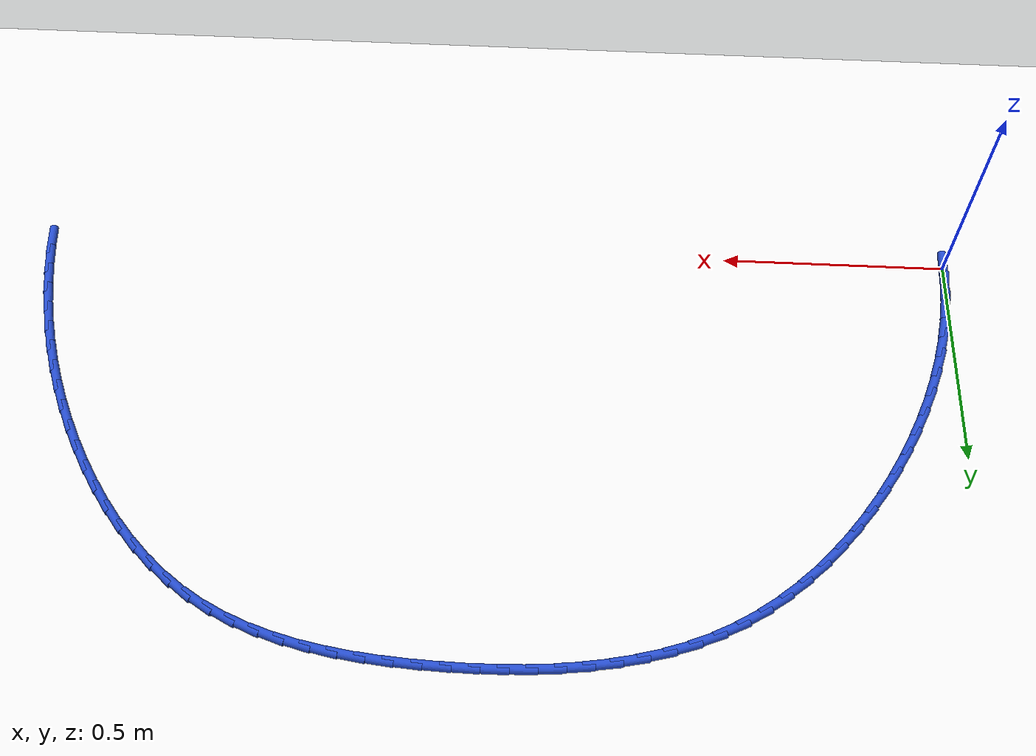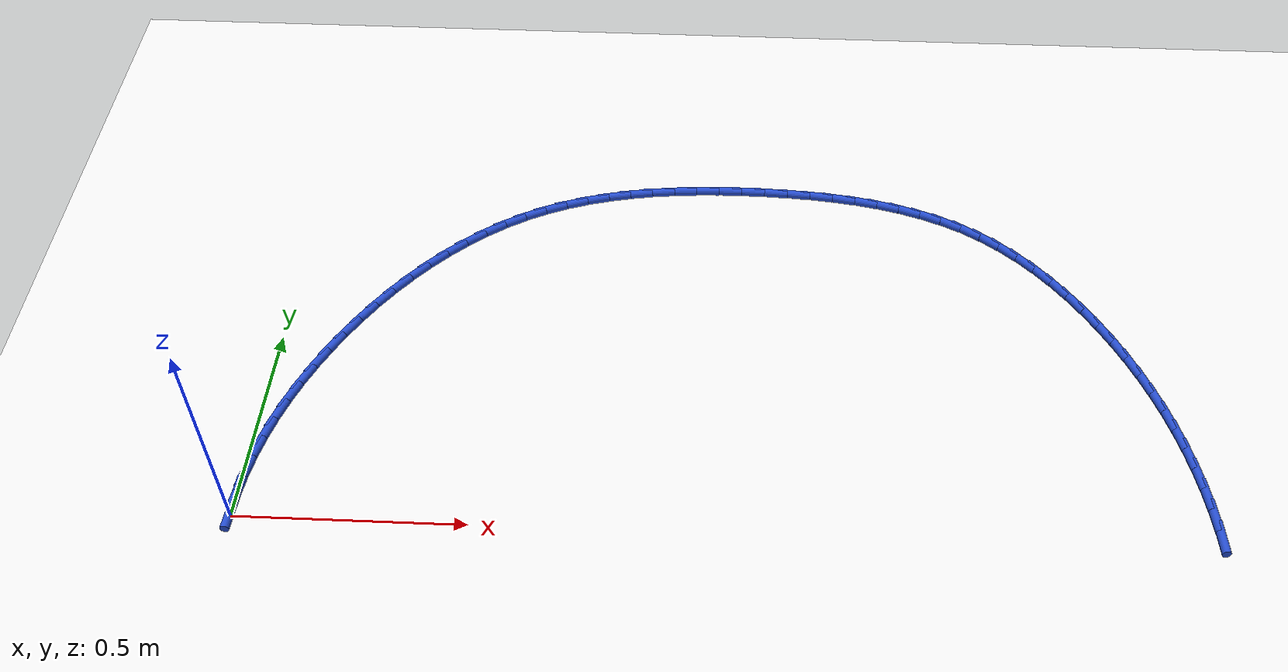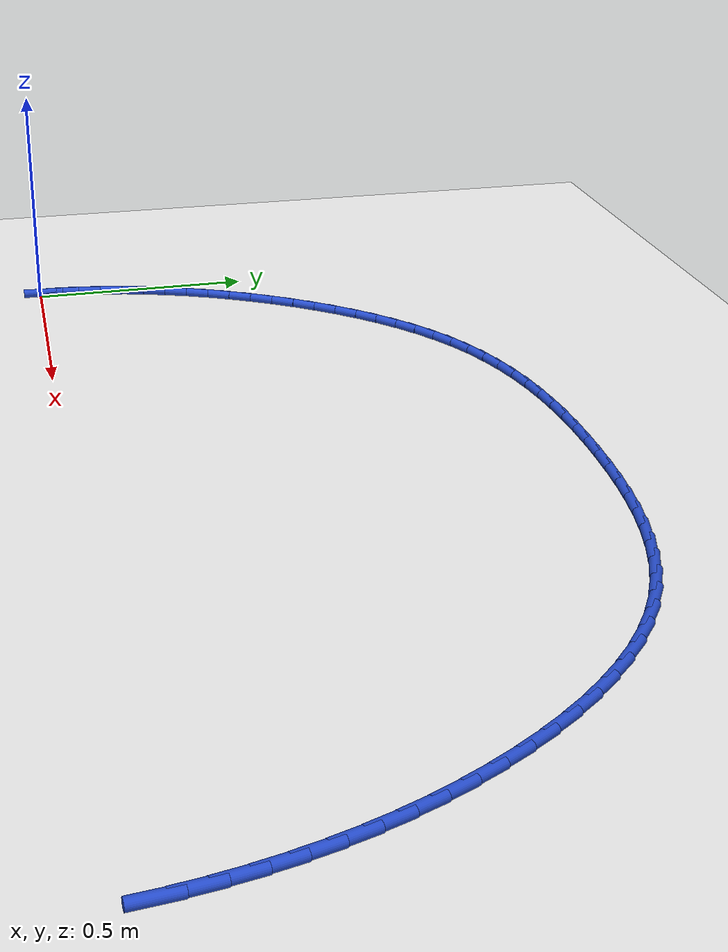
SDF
<sdf version="1.6">
 <world name="default">
  <model name="ground_plane">
   <static>1</static>
   <link name="link">
    <collision name="collision">
     <geometry><plane><normal>0 0 1</normal><size>100 100</size></plane></geometry>
     <surface><friction><ode><mu>100</mu><mu2>50</mu2></ode></friction></surface>
    </collision>
    <visual name="visual">
     <cast_shadows>0</cast_shadows>
     <geometry><plane><normal>0 0 1</normal><size>100 100</size></plane></geometry>
     <material>
      <script><uri>file://media/materials/scripts/gazebo.material</uri><name>Gazebo/WhiteGlow</name></script>
     </material>
    </visual>
   </link>
  </model>
  <model name="line">
   <link name="link_0">
    <pose>0.0 -9.71445146547012e-17 0.01 0 1.57 1.5337938187160576</pose>
    <collision name="collision">
     <geometry><cylinder><radius>0.01</radius><length>0.08</length></cylinder></geometry>
    </collision>
    <visual name="visual">
     <material>
      <script><name>Gazebo/Blue</name><uri>file://media/materials/scripts/gazebo.material</uri></script>
     </material>
     <geometry><cylinder><radius>0.01</radius><length>0.08</length></cylinder></geometry>
    </visual>
   </link>
   <link name="link_1">
    <pose>0.0020080975730357078 0.05424445821337343 0.01 0 1.57 1.4768710477645568</pose>
    <collision name="collision">
     <geometry><cylinder><radius>0.01</radius><length>0.08</length></cylinder></geometry>
    </collision>
    <visual name="visual">
     <material>
      <script><name>Gazebo/Blue</name><uri>file://media/materials/scripts/gazebo.material</uri></script>
     </material>
     <geometry><cylinder><radius>0.01</radius><length>0.08</length></cylinder></geometry>
    </visual>
   </link>
   <link name="link_2">
    <pose>0.007090089211388975 0.1081920058991359 0.01 0 1.57 1.421710677240095</pose>
    <collision name="collision">
     <geometry><cylinder><radius>0.01</radius><length>0.08</length></cylinder></geometry>
    </collision>
    <visual name="visual">
     <material>
      <script><name>Gazebo/Blue</name><uri>file://media/materials/scripts/gazebo.material</uri></script>
     </material>
     <geometry><cylinder><radius>0.01</radius><length>0.08</length></cylinder></geometry>
    </visual>
   </link>
   <link name="link_3">
    <pose>0.015138949781400707 0.16177958656209773 0.01 0 1.57 1.3684177659817578</pose>
    <collision name="collision">
     <geometry><cylinder><radius>0.01</radius><length>0.08</length></cylinder></geometry>
    </collision>
    <visual name="visual">
     <material>
      <script><name>Gazebo/Blue</name><uri>file://media/materials/scripts/gazebo.material</uri></script>
     </material>
     <geometry><cylinder><radius>0.01</radius><length>0.08</length></cylinder></geometry>
    </visual>
   </link>
   <link name="link_4">
    <pose>0.026047654149411792 0.2149441437070693 0.01 0 1.57 1.3170485905598486</pose>
    <collision name="collision">
     <geometry><cylinder><radius>0.01</radius><length>0.08</length></cylinder></geometry>
    </collision>
    <visual name="visual">
     <material>
      <script><name>Gazebo/Blue</name><uri>file://media/materials/scripts/gazebo.material</uri></script>
     </material>
     <geometry><cylinder><radius>0.01</radius><length>0.08</length></cylinder></geometry>
    </visual>
   </link>
   <link name="link_5">
    <pose>0.03970917718176313 0.2676226208388609 0.01 0 1.57 1.2676161765258909</pose>
    <collision name="collision">
     <geometry><cylinder><radius>0.01</radius><length>0.08</length></cylinder></geometry>
    </collision>
    <visual name="visual">
     <material>
      <script><name>Gazebo/Blue</name><uri>file://media/materials/scripts/gazebo.material</uri></script>
     </material>
     <geometry><cylinder><radius>0.01</radius><length>0.08</length></cylinder></geometry>
    </visual>
   </link>
   <link name="link_6">
    <pose>0.056016493744795615 0.319751961462283 0.01 0 1.57 1.2200966599346996</pose>
    <collision name="collision">
     <geometry><cylinder><radius>0.01</radius><length>0.08</length></cylinder></geometry>
    </collision>
    <visual name="visual">
     <material>
      <script><name>Gazebo/Blue</name><uri>file://media/materials/scripts/gazebo.material</uri></script>
     </material>
     <geometry><cylinder><radius>0.01</radius><length>0.08</length></cylinder></geometry>
    </visual>
   </link>
   <link name="link_7">
    <pose>0.07486257870485022 0.3712691090821462 0.01 0 1.57 1.174435828399938</pose>
    <collision name="collision">
     <geometry><cylinder><radius>0.01</radius><length>0.08</length></cylinder></geometry>
    </collision>
    <visual name="visual">
     <material>
      <script><name>Gazebo/Blue</name><uri>file://media/materials/scripts/gazebo.material</uri></script>
     </material>
     <geometry><cylinder><radius>0.01</radius><length>0.08</length></cylinder></geometry>
    </visual>
   </link>
   <link name="link_8">
    <pose>0.09614040692826768 0.42211100720326045 0.01 0 1.57 1.130555360009402</pose>
    <collision name="collision">
     <geometry><cylinder><radius>0.01</radius><length>0.08</length></cylinder></geometry>
    </collision>
    <visual name="visual">
     <material>
      <script><name>Gazebo/Blue</name><uri>file://media/materials/scripts/gazebo.material</uri></script>
     </material>
     <geometry><cylinder><radius>0.01</radius><length>0.08</length></cylinder></geometry>
    </visual>
   </link>
   <link name="link_9">
    <pose>0.11974295328138904 0.47221459933043647 0.01 0 1.57 1.088317438426141</pose>
    <collision name="collision">
     <geometry><cylinder><radius>0.01</radius><length>0.08</length></cylinder></geometry>
    </collision>
    <visual name="visual">
     <material>
      <script><name>Gazebo/Blue</name><uri>file://media/materials/scripts/gazebo.material</uri></script>
     </material>
     <geometry><cylinder><radius>0.01</radius><length>0.08</length></cylinder></geometry>
    </visual>
   </link>
   <link name="link_10">
    <pose>0.14556423087927486 0.5215138923226822 0.01 0 1.57 1.0462810934557991</pose>
    <collision name="collision">
     <geometry><cylinder><radius>0.01</radius><length>0.08</length></cylinder></geometry>
    </collision>
    <visual name="visual">
     <material>
      <script><name>Gazebo/Blue</name><uri>file://media/materials/scripts/gazebo.material</uri></script>
     </material>
     <geometry><cylinder><radius>0.01</radius><length>0.08</length></cylinder></geometry>
    </visual>
   </link>
   <link name="link_11">
    <pose>0.17353075215475183 0.5698509699927375 0.01 0 1.57 1.0025881842644917</pose>
    <collision name="collision">
     <geometry><cylinder><radius>0.01</radius><length>0.08</length></cylinder></geometry>
    </collision>
    <visual name="visual">
     <material>
      <script><name>Gazebo/Blue</name><uri>file://media/materials/scripts/gazebo.material</uri></script>
     </material>
     <geometry><cylinder><radius>0.01</radius><length>0.08</length></cylinder></geometry>
    </visual>
   </link>
   <link name="link_12">
    <pose>0.2036071901062648 0.6169599804894578 0.01 0 1.57 0.9567384374707011</pose>
    <collision name="collision">
     <geometry><cylinder><radius>0.01</radius><length>0.08</length></cylinder></geometry>
    </collision>
    <visual name="visual">
     <material>
      <script><name>Gazebo/Blue</name><uri>file://media/materials/scripts/gazebo.material</uri></script>
     </material>
     <geometry><cylinder><radius>0.01</radius><length>0.08</length></cylinder></geometry>
    </visual>
   </link>
   <link name="link_13">
    <pose>0.23576039739115706 0.662568906881949 0.01 0 1.57 0.9083118075134954</pose>
    <collision name="collision">
     <geometry><cylinder><radius>0.01</radius><length>0.08</length></cylinder></geometry>
    </collision>
    <visual name="visual">
     <material>
      <script><name>Gazebo/Blue</name><uri>file://media/materials/scripts/gazebo.material</uri></script>
     </material>
     <geometry><cylinder><radius>0.01</radius><length>0.08</length></cylinder></geometry>
    </visual>
   </link>
   <link name="link_14">
    <pose>0.2699572266667722 0.706405732239318 0.01 0 1.57 0.8568838714442155</pose>
    <collision name="collision">
     <geometry><cylinder><radius>0.01</radius><length>0.08</length></cylinder></geometry>
    </collision>
    <visual name="visual">
     <material>
      <script><name>Gazebo/Blue</name><uri>file://media/materials/scripts/gazebo.material</uri></script>
     </material>
     <geometry><cylinder><radius>0.01</radius><length>0.08</length></cylinder></geometry>
    </visual>
   </link>
   <link name="link_15">
    <pose>0.3061645305904537 0.7481984396306713 0.01 0 1.57 0.8020322360676051</pose>
    <collision name="collision">
     <geometry><cylinder><radius>0.01</radius><length>0.08</length></cylinder></geometry>
    </collision>
    <visual name="visual">
     <material>
      <script><name>Gazebo/Blue</name><uri>file://media/materials/scripts/gazebo.material</uri></script>
     </material>
     <geometry><cylinder><radius>0.01</radius><length>0.08</length></cylinder></geometry>
    </visual>
   </link>
   <link name="link_16">
    <pose>0.3443491618195449 0.7876750121251148 0.01 0 1.57 0.7433493849099531</pose>
    <collision name="collision">
     <geometry><cylinder><radius>0.01</radius><length>0.08</length></cylinder></geometry>
    </collision>
    <visual name="visual">
     <material>
      <script><name>Gazebo/Blue</name><uri>file://media/materials/scripts/gazebo.material</uri></script>
     </material>
     <geometry><cylinder><radius>0.01</radius><length>0.08</length></cylinder></geometry>
    </visual>
   </link>
   <link name="link_17">
    <pose>0.3844779730113894 0.8245634327917555 0.01 0 1.57 0.6804637048163268</pose>
    <collision name="collision">
     <geometry><cylinder><radius>0.01</radius><length>0.08</length></cylinder></geometry>
    </collision>
    <visual name="visual">
     <material>
      <script><name>Gazebo/Blue</name><uri>file://media/materials/scripts/gazebo.material</uri></script>
     </material>
     <geometry><cylinder><radius>0.01</radius><length>0.08</length></cylinder></geometry>
    </visual>
   </link>
   <link name="link_18">
    <pose>0.42651781682333056 0.8585916846996995 0.01 0 1.57 0.6130702413268603</pose>
    <collision name="collision">
     <geometry><cylinder><radius>0.01</radius><length>0.08</length></cylinder></geometry>
    </collision>
    <visual name="visual">
     <material>
      <script><name>Gazebo/Blue</name><uri>file://media/materials/scripts/gazebo.material</uri></script>
     </material>
     <geometry><cylinder><radius>0.01</radius><length>0.08</length></cylinder></geometry>
    </visual>
   </link>
   <link name="link_19">
    <pose>0.47043554591271214 0.8894877509180537 0.01 0 1.57 0.5409717764273695</pose>
    <collision name="collision">
     <geometry><cylinder><radius>0.01</radius><length>0.08</length></cylinder></geometry>
    </collision>
    <visual name="visual">
     <material>
      <script><name>Gazebo/Blue</name><uri>file://media/materials/scripts/gazebo.material</uri></script>
     </material>
     <geometry><cylinder><radius>0.01</radius><length>0.08</length></cylinder></geometry>
    </visual>
   </link>
   <link name="link_20">
    <pose>0.5161980129368773 0.916979614515924 0.01 0 1.57 0.4651238344144398</pose>
    <collision name="collision">
     <geometry><cylinder><radius>0.01</radius><length>0.08</length></cylinder></geometry>
    </collision>
    <visual name="visual">
     <material>
      <script><name>Gazebo/Blue</name><uri>file://media/materials/scripts/gazebo.material</uri></script>
     </material>
     <geometry><cylinder><radius>0.01</radius><length>0.08</length></cylinder></geometry>
    </visual>
   </link>
   <link name="link_21">
    <pose>0.5637574474924453 0.9408471572400198 0.01 0 1.57 0.39197379963954354</pose>
    <collision name="collision">
     <geometry><cylinder><radius>0.01</radius><length>0.08</length></cylinder></geometry>
    </collision>
    <visual name="visual">
     <material>
      <script><name>Gazebo/Blue</name><uri>file://media/materials/scripts/gazebo.material</uri></script>
     </material>
     <geometry><cylinder><radius>0.01</radius><length>0.08</length></cylinder></geometry>
    </visual>
   </link>
   <link name="link_22">
    <pose>0.6129753996001096 0.9611920915512101 0.01 0 1.57 0.32434220138432523</pose>
    <collision name="collision">
     <geometry><cylinder><radius>0.01</radius><length>0.08</length></cylinder></geometry>
    </collision>
    <visual name="visual">
     <material>
      <script><name>Gazebo/Blue</name><uri>file://media/materials/scripts/gazebo.material</uri></script>
     </material>
     <geometry><cylinder><radius>0.01</radius><length>0.08</length></cylinder></geometry>
    </visual>
   </link>
   <link name="link_23">
    <pose>0.6636787072514642 0.978239326308243 0.01 0 1.57 0.2624665496142167</pose>
    <collision name="collision">
     <geometry><cylinder><radius>0.01</radius><length>0.08</length></cylinder></geometry>
    </collision>
    <visual name="visual">
     <material>
      <script><name>Gazebo/Blue</name><uri>file://media/materials/scripts/gazebo.material</uri></script>
     </material>
     <geometry><cylinder><radius>0.01</radius><length>0.08</length></cylinder></geometry>
    </visual>
   </link>
   <link name="link_24">
    <pose>0.715694138126505 0.9922140199126248 0.01 0 1.57 0.20635971905220868</pose>
    <collision name="collision">
     <geometry><cylinder><radius>0.01</radius><length>0.08</length></cylinder></geometry>
    </collision>
    <visual name="visual">
     <material>
      <script><name>Gazebo/Blue</name><uri>file://media/materials/scripts/gazebo.material</uri></script>
     </material>
     <geometry><cylinder><radius>0.01</radius><length>0.08</length></cylinder></geometry>
    </visual>
   </link>
   <link name="link_25">
    <pose>0.7688484599052283 1.0033413307658632 0.01 0 1.57 0.1558775449557846</pose>
    <collision name="collision">
     <geometry><cylinder><radius>0.01</radius><length>0.08</length></cylinder></geometry>
    </collision>
    <visual name="visual">
     <material>
      <script><name>Gazebo/Blue</name><uri>file://media/materials/scripts/gazebo.material</uri></script>
     </material>
     <geometry><cylinder><radius>0.01</radius><length>0.08</length></cylinder></geometry>
    </visual>
   </link>
   <link name="link_26">
    <pose>0.8229684402676306 1.0118464172694643 0.01 0 1.57 0.11077670152864359</pose>
    <collision name="collision">
     <geometry><cylinder><radius>0.01</radius><length>0.08</length></cylinder></geometry>
    </collision>
    <visual name="visual">
     <material>
      <script><name>Gazebo/Blue</name><uri>file://media/materials/scripts/gazebo.material</uri></script>
     </material>
     <geometry><cylinder><radius>0.01</radius><length>0.08</length></cylinder></geometry>
    </visual>
   </link>
   <link name="link_27">
    <pose>0.8778808468937076 1.0179544378249352 0.01 0 1.57 0.07076225092002998</pose>
    <collision name="collision">
     <geometry><cylinder><radius>0.01</radius><length>0.08</length></cylinder></geometry>
    </collision>
    <visual name="visual">
     <material>
      <script><name>Gazebo/Blue</name><uri>file://media/materials/scripts/gazebo.material</uri></script>
     </material>
     <geometry><cylinder><radius>0.01</radius><length>0.08</length></cylinder></geometry>
    </visual>
   </link>
   <link name="link_28">
    <pose>0.9334124474634561 1.0218905508337837 0.01 0 1.57 0.035523643818036285</pose>
    <collision name="collision">
     <geometry><cylinder><radius>0.01</radius><length>0.08</length></cylinder></geometry>
    </collision>
    <visual name="visual">
     <material>
      <script><name>Gazebo/Blue</name><uri>file://media/materials/scripts/gazebo.material</uri></script>
     </material>
     <geometry><cylinder><radius>0.01</radius><length>0.08</length></cylinder></geometry>
    </visual>
   </link>
   <link name="link_29">
    <pose>0.9893900096568723 1.0238799146975157 0.01 0 1.57 0.0047603503969486476</pose>
    <collision name="collision">
     <geometry><cylinder><radius>0.01</radius><length>0.08</length></cylinder></geometry>
    </collision>
    <visual name="visual">
     <material>
      <script><name>Gazebo/Blue</name><uri>file://media/materials/scripts/gazebo.material</uri></script>
     </material>
     <geometry><cylinder><radius>0.01</radius><length>0.08</length></cylinder></geometry>
    </visual>
   </link>
   <link name="link_30">
    <pose>1.0456403011539521 1.0241476878176385 0.01 0 1.57 -0.02183841988006734</pose>
    <collision name="collision">
     <geometry><cylinder><radius>0.01</radius><length>0.08</length></cylinder></geometry>
    </collision>
    <visual name="visual">
     <material>
      <script><name>Gazebo/Blue</name><uri>file://media/materials/scripts/gazebo.material</uri></script>
     </material>
     <geometry><cylinder><radius>0.01</radius><length>0.08</length></cylinder></geometry>
    </visual>
   </link>
   <link name="link_31">
    <pose>1.1019898421703516 1.022916907214759 0.01 0 1.57 -0.04767148788471651</pose>
    <collision name="collision">
     <geometry><cylinder><radius>0.01</radius><length>0.08</length></cylinder></geometry>
    </collision>
    <visual name="visual">
     <material>
      <script><name>Gazebo/Blue</name><uri>file://media/materials/scripts/gazebo.material</uri></script>
     </material>
     <geometry><cylinder><radius>0.01</radius><length>0.08</length></cylinder></geometry>
    </visual>
   </link>
   <link name="link_32">
    <pose>1.1582444498047615 1.0202331330381391 0.01 0 1.57 -0.07850627951880287</pose>
    <collision name="collision">
     <geometry><cylinder><radius>0.01</radius><length>0.08</length></cylinder></geometry>
    </collision>
    <visual name="visual">
     <material>
      <script><name>Gazebo/Blue</name><uri>file://media/materials/scripts/gazebo.material</uri></script>
     </material>
     <geometry><cylinder><radius>0.01</radius><length>0.08</length></cylinder></geometry>
    </visual>
   </link>
   <link name="link_33">
    <pose>1.2141739362361705 1.0158332743043448 0.01 0 1.57 -0.11525129488998707</pose>
    <collision name="collision">
     <geometry><cylinder><radius>0.01</radius><length>0.08</length></cylinder></geometry>
    </collision>
    <visual name="visual">
     <material>
      <script><name>Gazebo/Blue</name><uri>file://media/materials/scripts/gazebo.material</uri></script>
     </material>
     <geometry><cylinder><radius>0.01</radius><length>0.08</length></cylinder></geometry>
    </visual>
   </link>
   <link name="link_34">
    <pose>1.2695445088664958 1.0094233381827644 0.01 0 1.57 -0.15832559340587474</pose>
    <collision name="collision">
     <geometry><cylinder><radius>0.01</radius><length>0.08</length></cylinder></geometry>
    </collision>
    <visual name="visual">
     <material>
      <script><name>Gazebo/Blue</name><uri>file://media/materials/scripts/gazebo.material</uri></script>
     </material>
     <geometry><cylinder><radius>0.01</radius><length>0.08</length></cylinder></geometry>
    </visual>
   </link>
   <link name="link_35">
    <pose>1.3241223750976545 1.0007093318427867 0.01 0 1.57 -0.20817735264432166</pose>
    <collision name="collision">
     <geometry><cylinder><radius>0.01</radius><length>0.08</length></cylinder></geometry>
    </collision>
    <visual name="visual">
     <material>
      <script><name>Gazebo/Blue</name><uri>file://media/materials/scripts/gazebo.material</uri></script>
     </material>
     <geometry><cylinder><radius>0.01</radius><length>0.08</length></cylinder></geometry>
    </visual>
   </link>
   <link name="link_36">
    <pose>1.3776737423315648 0.989397262453801 0.01 0 1.57 -0.2652358071529735</pose>
    <collision name="collision">
     <geometry><cylinder><radius>0.01</radius><length>0.08</length></cylinder></geometry>
    </collision>
    <visual name="visual">
     <material>
      <script><name>Gazebo/Blue</name><uri>file://media/materials/scripts/gazebo.material</uri></script>
     </material>
     <geometry><cylinder><radius>0.01</radius><length>0.08</length></cylinder></geometry>
    </visual>
   </link>
   <link name="link_37">
    <pose>1.4299648179701427 0.9751931371851947 0.01 0 1.57 -0.3298403838101555</pose>
    <collision name="collision">
     <geometry><cylinder><radius>0.01</radius><length>0.08</length></cylinder></geometry>
    </collision>
    <visual name="visual">
     <material>
      <script><name>Gazebo/Blue</name><uri>file://media/materials/scripts/gazebo.material</uri></script>
     </material>
     <geometry><cylinder><radius>0.01</radius><length>0.08</length></cylinder></geometry>
    </visual>
   </link>
   <link name="link_38">
    <pose>1.4807618094153068 0.9578029632063576 0.01 0 1.57 -0.4021440695471434</pose>
    <collision name="collision">
     <geometry><cylinder><radius>0.01</radius><length>0.08</length></cylinder></geometry>
    </collision>
    <visual name="visual">
     <material>
      <script><name>Gazebo/Blue</name><uri>file://media/materials/scripts/gazebo.material</uri></script>
     </material>
     <geometry><cylinder><radius>0.01</radius><length>0.08</length></cylinder></geometry>
    </visual>
   </link>
   <link name="link_39">
    <pose>1.5298309240689736 0.9369327476866774 0.01 0 1.57 -0.48199545973370833</pose>
    <collision name="collision">
     <geometry><cylinder><radius>0.01</radius><length>0.08</length></cylinder></geometry>
    </collision>
    <visual name="visual">
     <material>
      <script><name>Gazebo/Blue</name><uri>file://media/materials/scripts/gazebo.material</uri></script>
     </material>
     <geometry><cylinder><radius>0.01</radius><length>0.08</length></cylinder></geometry>
    </visual>
   </link>
   <link name="link_40">
    <pose>1.5769383693330605 0.9122884977955431 0.01 0 1.57 -0.5677670746829623</pose>
    <collision name="collision">
     <geometry><cylinder><radius>0.01</radius><length>0.08</length></cylinder></geometry>
    </collision>
    <visual name="visual">
     <material>
      <script><name>Gazebo/Blue</name><uri>file://media/materials/scripts/gazebo.material</uri></script>
     </material>
     <geometry><cylinder><radius>0.01</radius><length>0.08</length></cylinder></geometry>
    </visual>
   </link>
   <link name="link_41">
    <pose>1.6218694548265424 0.8836304294210203 0.01 0 1.57 -0.6504022521669933</pose>
    <collision name="collision">
     <geometry><cylinder><radius>0.01</radius><length>0.08</length></cylinder></geometry>
    </collision>
    <visual name="visual">
     <material>
      <script><name>Gazebo/Blue</name><uri>file://media/materials/scripts/gazebo.material</uri></script>
     </material>
     <geometry><cylinder><radius>0.01</radius><length>0.08</length></cylinder></geometry>
    </visual>
   </link>
   <link name="link_42">
    <pose>1.6645610853078139 0.851148958686094 0.01 0 1.57 -0.7258659902118962</pose>
    <collision name="collision">
     <geometry><cylinder><radius>0.01</radius><length>0.08</length></cylinder></geometry>
    </collision>
    <visual name="visual">
     <material>
      <script><name>Gazebo/Blue</name><uri>file://media/materials/scripts/gazebo.material</uri></script>
     </material>
     <geometry><cylinder><radius>0.01</radius><length>0.08</length></cylinder></geometry>
    </visual>
   </link>
   <link name="link_43">
    <pose>1.7050224129214835 0.815239527037386 0.01 0 1.57 -0.7944683857732682</pose>
    <collision name="collision">
     <geometry><cylinder><radius>0.01</radius><length>0.08</length></cylinder></geometry>
    </collision>
    <visual name="visual">
     <material>
      <script><name>Gazebo/Blue</name><uri>file://media/materials/scripts/gazebo.material</uri></script>
     </material>
     <geometry><cylinder><radius>0.01</radius><length>0.08</length></cylinder></geometry>
    </visual>
   </link>
   <link name="link_44">
    <pose>1.743263033647353 0.7762988354474212 0.01 0 1.57 -0.8567382376983603</pose>
    <collision name="collision">
     <geometry><cylinder><radius>0.01</radius><length>0.08</length></cylinder></geometry>
    </collision>
    <visual name="visual">
     <material>
      <script><name>Gazebo/Blue</name><uri>file://media/materials/scripts/gazebo.material</uri></script>
     </material>
     <geometry><cylinder><radius>0.01</radius><length>0.08</length></cylinder></geometry>
    </visual>
   </link>
   <link name="link_45">
    <pose>1.7792925434652254 0.7347235848887242 0.01 0 1.57 -0.9133021153153169</pose>
    <collision name="collision">
     <geometry><cylinder><radius>0.01</radius><length>0.08</length></cylinder></geometry>
    </collision>
    <visual name="visual">
     <material>
      <script><name>Gazebo/Blue</name><uri>file://media/materials/scripts/gazebo.material</uri></script>
     </material>
     <geometry><cylinder><radius>0.01</radius><length>0.08</length></cylinder></geometry>
    </visual>
   </link>
   <link name="link_46">
    <pose>1.8131205383549018 0.6909104763338201 0.01 0 1.57 -0.9648182949986206</pose>
    <collision name="collision">
     <geometry><cylinder><radius>0.01</radius><length>0.08</length></cylinder></geometry>
    </collision>
    <visual name="visual">
     <material>
      <script><name>Gazebo/Blue</name><uri>file://media/materials/scripts/gazebo.material</uri></script>
     </material>
     <geometry><cylinder><radius>0.01</radius><length>0.08</length></cylinder></geometry>
    </visual>
   </link>
   <link name="link_47">
    <pose>1.8447566142961858 0.6452562107552335 0.01 0 1.57 -1.0119367053597792</pose>
    <collision name="collision">
     <geometry><cylinder><radius>0.01</radius><length>0.08</length></cylinder></geometry>
    </collision>
    <visual name="visual">
     <material>
      <script><name>Gazebo/Blue</name><uri>file://media/materials/scripts/gazebo.material</uri></script>
     </material>
     <geometry><cylinder><radius>0.01</radius><length>0.08</length></cylinder></geometry>
    </visual>
   </link>
   <link name="link_48">
    <pose>1.8742103672688795 0.5981574891254893 0.01 0 1.57 -1.0552842701669276</pose>
    <collision name="collision">
     <geometry><cylinder><radius>0.01</radius><length>0.08</length></cylinder></geometry>
    </collision>
    <visual name="visual">
     <material>
      <script><name>Gazebo/Blue</name><uri>file://media/materials/scripts/gazebo.material</uri></script>
     </material>
     <geometry><cylinder><radius>0.01</radius><length>0.08</length></cylinder></geometry>
    </visual>
   </link>
   <link name="link_49">
    <pose>1.9014914175508888 0.5500103116087803 0.01 0 1.57 -1.096305671959812</pose>
    <collision name="collision">
     <geometry><cylinder><radius>0.01</radius><length>0.08</length></cylinder></geometry>
    </collision>
    <visual name="visual">
     <material>
      <script><name>Gazebo/Blue</name><uri>file://media/materials/scripts/gazebo.material</uri></script>
     </material>
     <geometry><cylinder><radius>0.01</radius><length>0.08</length></cylinder></geometry>
    </visual>
   </link>
   <link name="link_50">
    <pose>1.9266132292246327 0.5010998149766065 0.01 0 1.57 -1.1370160811038994</pose>
    <collision name="collision">
     <geometry><cylinder><radius>0.01</radius><length>0.08</length></cylinder></geometry>
    </collision>
    <visual name="visual">
     <material>
      <script><name>Gazebo/Blue</name><uri>file://media/materials/scripts/gazebo.material</uri></script>
     </material>
     <geometry><cylinder><radius>0.01</radius><length>0.08</length></cylinder></geometry>
    </visual>
   </link>
   <link name="link_51">
    <pose>1.9495972751100532 0.45148014719494595 0.01 0 1.57 -1.1775486547170828</pose>
    <collision name="collision">
     <geometry><cylinder><radius>0.01</radius><length>0.08</length></cylinder></geometry>
    </collision>
    <visual name="visual">
     <material>
      <script><name>Gazebo/Blue</name><uri>file://media/materials/scripts/gazebo.material</uri></script>
     </material>
     <geometry><cylinder><radius>0.01</radius><length>0.08</length></cylinder></geometry>
    </visual>
   </link>
   <link name="link_52">
    <pose>1.9704660288633236 0.4011765900114948 0.01 0 1.57 -1.2177990131537368</pose>
    <collision name="collision">
     <geometry><cylinder><radius>0.01</radius><length>0.08</length></cylinder></geometry>
    </collision>
    <visual name="visual">
     <material>
      <script><name>Gazebo/Blue</name><uri>file://media/materials/scripts/gazebo.material</uri></script>
     </material>
     <geometry><cylinder><radius>0.01</radius><length>0.08</length></cylinder></geometry>
    </visual>
   </link>
   <link name="link_53">
    <pose>1.989241964140616 0.3502144251739497 0.01 0 1.57 -1.257668228167466</pose>
    <collision name="collision">
     <geometry><cylinder><radius>0.01</radius><length>0.08</length></cylinder></geometry>
    </collision>
    <visual name="visual">
     <material>
      <script><name>Gazebo/Blue</name><uri>file://media/materials/scripts/gazebo.material</uri></script>
     </material>
     <geometry><cylinder><radius>0.01</radius><length>0.08</length></cylinder></geometry>
    </visual>
   </link>
   <link name="link_54">
    <pose>2.0059475545981034 0.29861893443000664 0.01 0 1.57 -1.2970642853959258</pose>
    <collision name="collision">
     <geometry><cylinder><radius>0.01</radius><length>0.08</length></cylinder></geometry>
    </collision>
    <visual name="visual">
     <material>
      <script><name>Gazebo/Blue</name><uri>file://media/materials/scripts/gazebo.material</uri></script>
     </material>
     <geometry><cylinder><radius>0.01</radius><length>0.08</length></cylinder></geometry>
    </visual>
   </link>
   <link name="link_55">
    <pose>2.0206052738919595 0.24641539952736294 0.01 0 1.57 -1.3359032778552755</pose>
    <collision name="collision">
     <geometry><cylinder><radius>0.01</radius><length>0.08</length></cylinder></geometry>
    </collision>
    <visual name="visual">
     <material>
      <script><name>Gazebo/Blue</name><uri>file://media/materials/scripts/gazebo.material</uri></script>
     </material>
     <geometry><cylinder><radius>0.01</radius><length>0.08</length></cylinder></geometry>
    </visual>
   </link>
   <link name="link_56">
    <pose>2.0332375956783566 0.1936291022137141 0.01 0 1.57 -1.374110301768272</pose>
    <collision name="collision">
     <geometry><cylinder><radius>0.01</radius><length>0.08</length></cylinder></geometry>
    </collision>
    <visual name="visual">
     <material>
      <script><name>Gazebo/Blue</name><uri>file://media/materials/scripts/gazebo.material</uri></script>
     </material>
     <geometry><cylinder><radius>0.01</radius><length>0.08</length></cylinder></geometry>
    </visual>
   </link>
   <link name="link_57">
    <pose>2.0438669936134675 0.1402853242367574 0.01 0 1.57 -1.411620045166939</pose>
    <collision name="collision">
     <geometry><cylinder><radius>0.01</radius><length>0.08</length></cylinder></geometry>
    </collision>
    <visual name="visual">
     <material>
      <script><name>Gazebo/Blue</name><uri>file://media/materials/scripts/gazebo.material</uri></script>
     </material>
     <geometry><cylinder><radius>0.01</radius><length>0.08</length></cylinder></geometry>
    </visual>
   </link>
   <link name="link_58">
    <pose>2.052515941353465 0.08640934734418858 0.01 0 1.57 -1.4483770773563214</pose>
    <collision name="collision">
     <geometry><cylinder><radius>0.01</radius><length>0.08</length></cylinder></geometry>
    </collision>
    <visual name="visual">
     <material>
      <script><name>Gazebo/Blue</name><uri>file://media/materials/scripts/gazebo.material</uri></script>
     </material>
     <geometry><cylinder><radius>0.01</radius><length>0.08</length></cylinder></geometry>
    </visual>
   </link>
   <link name="link_59">
    <pose>2.0592069125545223 0.03202645328370482 0.01 0 1.57 -1.4845055835397227</pose>
    <collision name="collision">
     <geometry><cylinder><radius>0.01</radius><length>0.08</length></cylinder></geometry>
    </collision>
    <visual name="visual">
     <material>
      <script><name>Gazebo/Blue</name><uri>file://media/materials/scripts/gazebo.material</uri></script>
     </material>
     <geometry><cylinder><radius>0.01</radius><length>0.08</length></cylinder></geometry>
    </visual>
   </link>
   <link name="link_121">
    <pose>0.0020342459157034996 0.05422000030624098 0.01 0 1.57 1.5332955480706632</pose>
    <collision name="collision">
     <geometry><cylinder><radius>0.01</radius><length>0.08</length></cylinder></geometry>
    </collision>
    <visual name="visual">
     <material>
      <script><name>Gazebo/Blue</name><uri>file://media/materials/scripts/gazebo.material</uri></script>
     </material>
     <geometry><cylinder><radius>0.01</radius><length>0.08</length></cylinder></geometry>
    </visual>
   </link>
  </model>
 </world>
</sdf>
